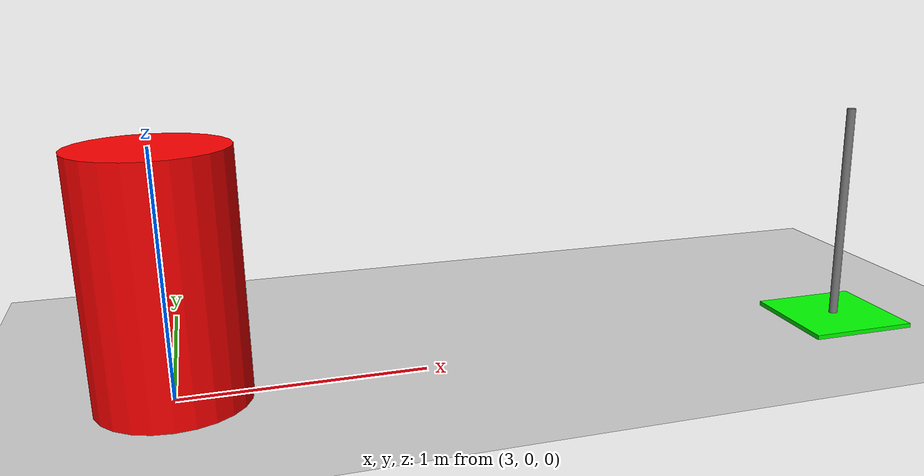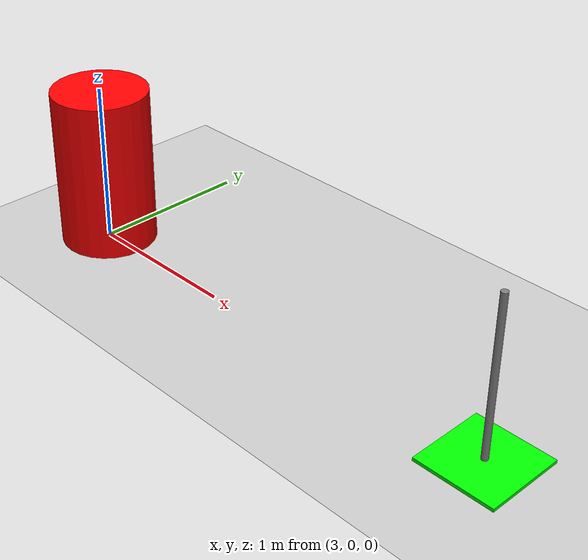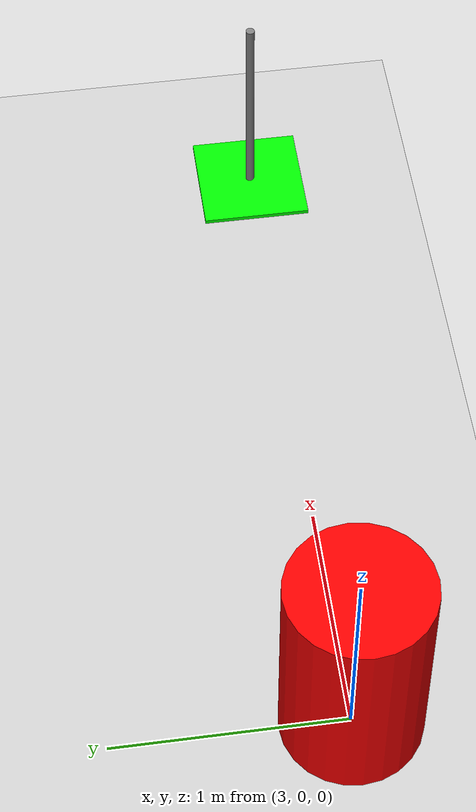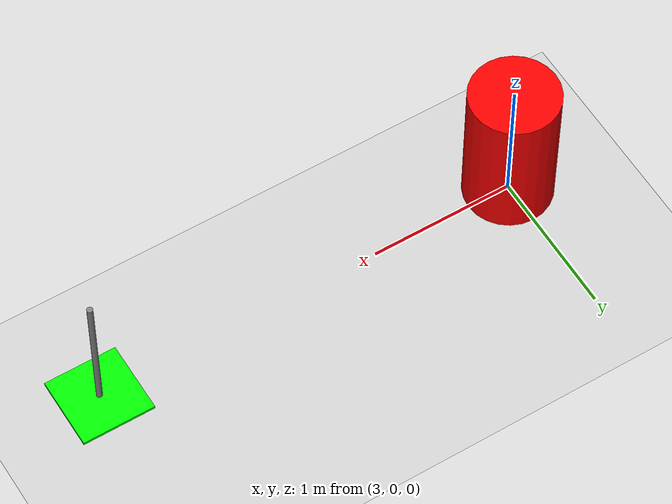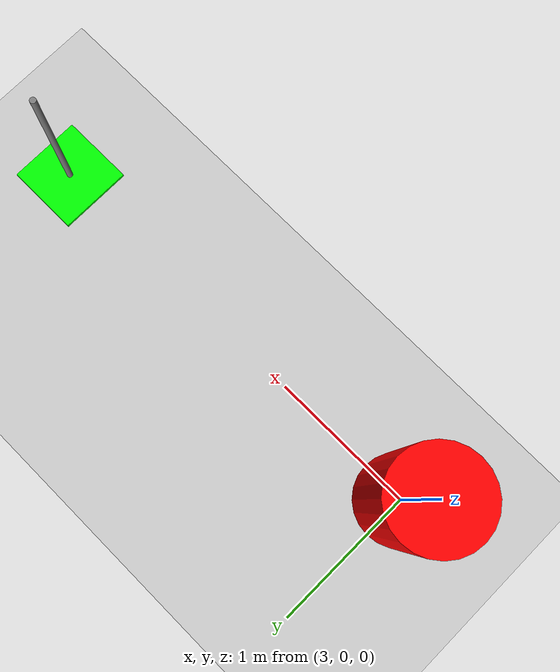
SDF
<?xml version="1.0" ?>
<sdf version="1.6">
  <world name="demo_obstacle_world">
    <!-- 全局光源 -->
    <include>
      <uri>model://sun</uri>
    </include>
    <!-- 地面 -->
    <include>
      <uri>model://ground_plane</uri>
    </include>

    <!-- 障碍物：位于小车前方3m处 (x=3, y=0) -->
    <model name="obstacle_cylinder">
      <static>true</static>
      <pose>3 0 0.5 0 0 0</pose>
      <link name="link">
        <collision name="collision">
          <geometry>
            <cylinder>
              <radius>0.3</radius>
              <length>1.0</length>
            </cylinder>
          </geometry>
        </collision>
        <visual name="visual">
          <geometry>
            <cylinder>
              <radius>0.3</radius>
              <length>1.0</length>
            </cylinder>
          </geometry>
          <material>
            <ambient>1 0 0 1</ambient>
            <diffuse>1 0 0 1</diffuse>
          </material>
        </visual>
      </link>
    </model>

    <!-- 终点标识：位于6m处 (x=6, y=0) -->
    <model name="goal_marker">
      <static>true</static>
      <pose>6 0 0.01 0 0 0</pose>
      <link name="link">
        <visual name="visual">
          <geometry>
            <box>
              <size>0.5 0.5 0.02</size>
            </box>
          </geometry>
          <material>
            <ambient>0 1 0 1</ambient>
            <diffuse>0 1 0 1</diffuse>
          </material>
        </visual>
      </link>
    </model>

    <!-- 终点旗杆 -->
    <model name="goal_flag">
      <static>true</static>
      <pose>6 0 0.5 0 0 0</pose>
      <link name="pole">
        <visual name="pole_visual">
          <geometry>
            <cylinder>
              <radius>0.02</radius>
              <length>1.0</length>
            </cylinder>
          </geometry>
          <material>
            <ambient>0.5 0.5 0.5 1</ambient>
            <diffuse>0.5 0.5 0.5 1</diffuse>
          </material>
        </visual>
      </link>
    </model>

  </world>
</sdf>
